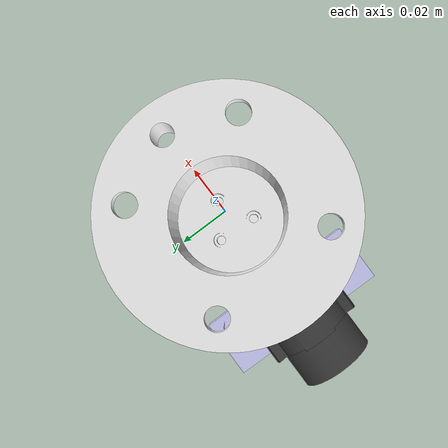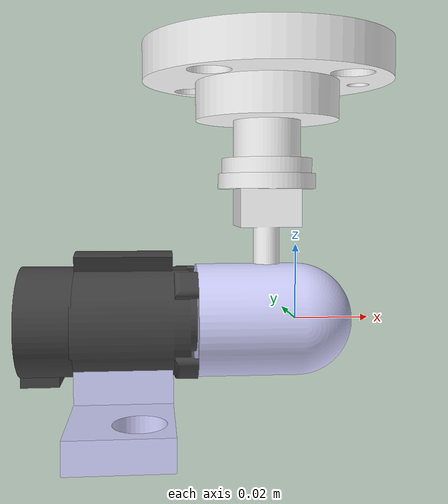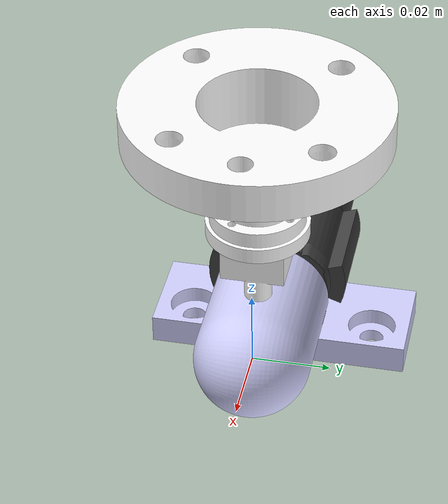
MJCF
<?xml version="1.0" encoding="UTF-8"?>
<mujoco>
	<asset>
	  <texture type="skybox" builtin="gradient" rgb1="1 1 1" rgb2="1 1 1" width="512" height="3072"/>
		<mesh file="STL/Back shell.stl" name="Back shell" scale="0.001 0.001 0.001"></mesh>
		<mesh file="STL/Base.stl" name="Base" scale="0.001 0.001 0.001"></mesh>
    <mesh file="STL/GelTip elastomer.stl" name="GelTip elastomer" scale="0.001 0.001 0.001"></mesh>
    <mesh file="STL/Shell.stl" name="Shell" scale="0.001 0.001 0.001"></mesh>
    <mesh file="STL/Transparent tube.stl" name="Transparent tube" scale="0.001 0.001 0.001"></mesh>

    <mesh file="STL/Cube.stl" name="Cube" scale="0.001 0.001 0.001"></mesh>
    <mesh file="STL/X.stl" name="X" scale="0.001 0.001 0.001"></mesh>
    <mesh file="STL/Triangle.stl" name="Triangle" scale="0.001 0.001 0.001"></mesh>
    <mesh file="STL/Sphere_R27.stl" name="Sphere_R27" scale="0.001 0.001 0.001"></mesh>
    <mesh file="STL/Pacman.stl" name="Pacman" scale="0.001 0.001 0.001"></mesh>
    <mesh file="STL/Hexagon.stl" name="Hexagon" scale="0.001 0.001 0.001"></mesh>
    <mesh file="STL/Fllower.stl" name="Fllower" scale="0.001 0.001 0.001"></mesh>
    <mesh file="STL/Ellipsoid_circle.stl" name="Ellipsoid_circle" scale="0.001 0.001 0.001"></mesh>
    <mesh file="STL/Ellipsoid.stl" name="Ellipsoid" scale="0.001 0.001 0.001"></mesh>
    <mesh file="STL/Double_cylinder_side.stl" name="Double_cylinder_side" scale="0.001 0.001 0.001"></mesh>
    <mesh file="STL/Cylinder.stl" name="Cylinder" scale="0.001 0.001 0.001"></mesh>
    <mesh file="STL/Sphere.stl" name="Sphere" scale="0.001 0.001 0.001"></mesh>
    <mesh file="STL/Diamond.stl" name="Diamond" scale="0.001 0.001 0.001"></mesh>
    <mesh file="STL/Cylinder_side.stl" name="Cylinder_side" scale="0.001 0.001 0.001"></mesh>
    <mesh file="STL/Indenter Connector 2.stl" name="Indenter Connector 2" scale="0.001 0.001 0.001"></mesh>
		<mesh file="STL/Indenter Connector.stl" name="Indenter Connector" scale="0.001 0.001 0.001"></mesh>
    <mesh file="STL/Nano 17.stl" name="Nano 17" scale="0.001 0.001 0.001"></mesh>
    <mesh file="STL/NANO Connector.stl" name="NANO Connector" scale="0.001 0.001 0.001"></mesh>

	</asset>
	<worldbody>
	 <camera name="main_camera" pos="0 0 0.5" euler="0 -30 0" fovy="45"/>

<!-- indenter -->
		<body name="indenter" pos="-0.008 0.0 0.0" euler="0 -90 0">
			<geom type="mesh" mesh="Cylinder" name="object_geom" rgba="1 1 1 1"></geom>
			<geom type="mesh" mesh="Indenter Connector 2" name="Indenter Connector 2_geom" rgba="1 1 1 1"></geom>
			<geom type="mesh" mesh="Indenter Connector" name="Indenter Connector_geom" rgba="1 1 1 1"></geom>
			<geom type="mesh" mesh="Nano 17" name="Nano 17_geom" rgba="1 1 1 1"></geom>
			<geom type="mesh" mesh="NANO Connector" name="NANO Connector_geom" rgba="1 1 1 1"></geom>
			<joint name="slide0" axis="0 0 1" damping="0"  pos="0 0 0" type="slide"/>
			<joint name="slide1" axis="0 1 0" damping="0"  pos="0 0 0" type="slide"/>
			<joint name="slide2" axis="1 0 0" damping="0"  pos="0 0 0" type="slide"/>

		</body>

<!-- sensor-->
		<body name="Base" pos="0 0 0" euler="0 0 0" >
			<geom type="mesh" mesh="Base" name="Base_geom" rgba="0.82353 0.82353 1 1"></geom>
			<body name="Shell" pos="0 0 0" >
				<geom type="mesh" mesh="Shell" name="Shell_geom" rgba="0.25098 0.25098 0.25098 1"></geom>
				<body name="Back shell" pos="0 0 0">
          <geom type="mesh" mesh="Back shell" name="Back shell_geom" rgba="0.25098 0.25098 0.25098 1"></geom>
          <body name="GelTip elastomer" pos="0 0 0">
            <geom type="mesh" mesh="GelTip elastomer" name="GelTip elastomer_geom" rgba ="0.823529 0.823529 1 1" ></geom>
            <body name="Transparent tube" pos="0 0 0">
              <geom type="mesh" mesh="Transparent tube" name="Transparent tube_geom" rgba ="0.823529 0.823529 1 1" ></geom>
            </body>
          </body>
        </body>
      </body>
    </body>

	</worldbody>
	<actuator>
        <velocity joint="slide0"/>
        <velocity joint="slide1"/>
        <velocity joint="slide2"/>
    </actuator>
    <contact>
    	<exclude body1 = "indenter" body2 = "GelTip elastomer"></exclude>
    </contact>
    <option timestep = "0.0001">
    	<flag gravity = "disable" ></flag>
    </option>

</mujoco>
